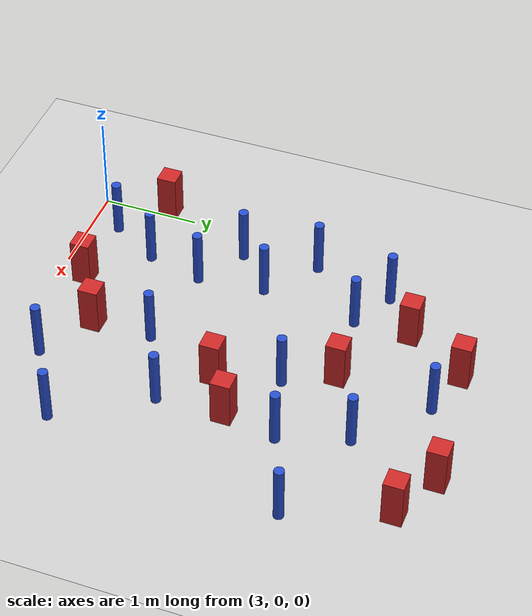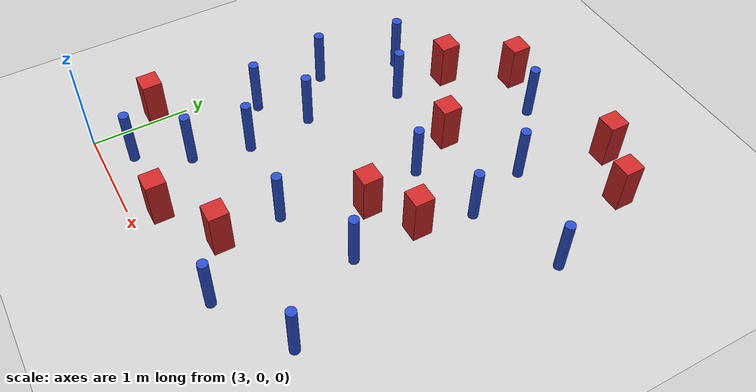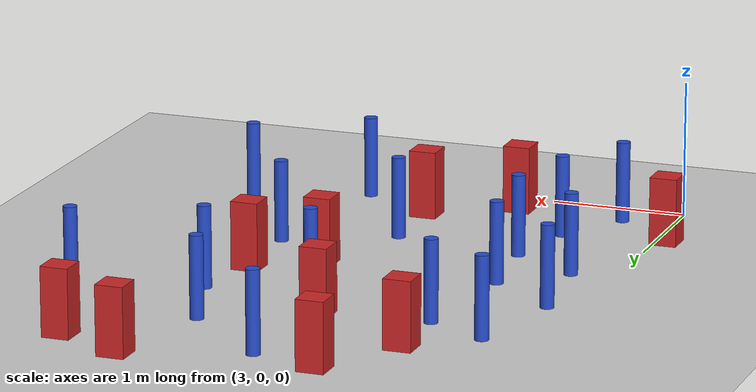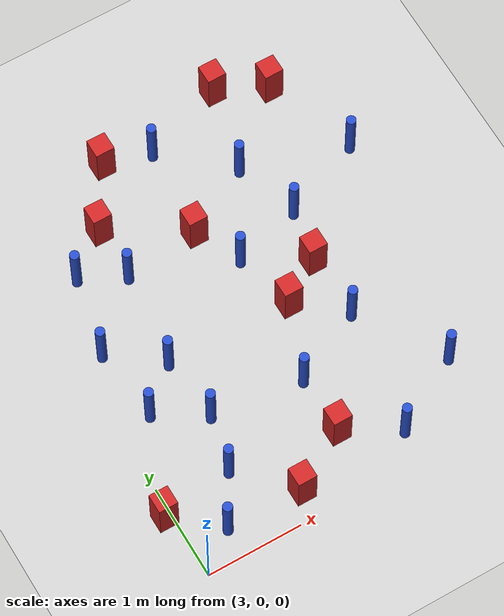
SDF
<sdf version="1.6">
 <world name="default">
  <model name="ground_plane">
   <static>1</static>
   <link name="link">
    <collision name="collision">
     <geometry><plane><normal>0 0 1</normal><size>100 100</size></plane></geometry>
     <surface><friction><ode><mu>100</mu><mu2>50</mu2></ode></friction></surface>
    </collision>
    <visual name="visual">
     <cast_shadows>0</cast_shadows>
     <geometry><plane><normal>0 0 1</normal><size>100 100</size></plane></geometry>
     <material>
      <ambient>1.0 1.0 1.0 1.0</ambient>
      <diffuse>0.8 0.8 0.8 1.0</diffuse>
      <specular>0.01 0.01 0.01 1.000000</specular>
     </material>
    </visual>
   </link>
  </model>
  <model name="square_post_obstacle3">
   <static>true</static>
   <pose>5.5003414567 2.2988376357 1.91545236811e-07 -7.35059704564e-06 1.12565212e-07 2.39332434364e-05</pose>
   <link name="link">
    <pose>0 0 0.25 0 -0 0</pose>
    <inertial>
     <mass>100</mass>
     <inertia>
      <ixx>0.166667</ixx>
      <ixy>0</ixy>
      <ixz>0</ixz>
      <iyy>0.166667</iyy>
      <iyz>0</iyz>
      <izz>0.166667</izz>
     </inertia>
    </inertial>
    <collision name="collision"><geometry><box><size>.2 .2 .5</size></box></geometry></collision>
    <visual name="visual">
     <geometry><box><size>.2 .2 .5</size></box></geometry>
     <material>
      <script><name>Gazebo/Red</name><uri>file://media/materials/scripts/gazebo.material</uri></script>
     </material>
    </visual>
   </link>
  </model>
  <model name="pole_obstacle5">
   <static>true</static>
   <pose>3.86888885222 3.05011009654 7.38925637345e-09 -8.47170692798e-08 1.24976764939e-08 -1.74513093025e-07</pose>
   <link name="link">
    <pose>0 0 0.3 0 -0 0</pose>
    <inertial>
     <mass>1</mass>
     <inertia><ixx>0.145833</ixx><ixy>0</ixy><ixz>0</ixz><iyy>0.145833</iyy><iyz>0</iyz><izz>0.125</izz></inertia>
    </inertial>
    <collision name="collision">
     <geometry><cylinder><radius>0.05</radius><length>.6</length></cylinder></geometry>
    </collision>
    <visual name="visual">
     <geometry><cylinder><radius>0.05</radius><length>.6</length></cylinder></geometry>
     <material>
      <script><name>Gazebo/Blue</name><uri>file://media/materials/scripts/gazebo.material</uri></script>
     </material>
    </visual>
   </link>
  </model>
  <model name="pole_obstacle19">
   <static>true</static>
   <pose>3.6784043861 0.794483437749 7.38925637345e-09 -8.471706928e-08 1.24976765177e-08 -1.74513093012e-07</pose>
   <link name="link">
    <pose>0 0 0.3 0 -0 0</pose>
    <inertial>
     <mass>1</mass>
     <inertia><ixx>0.145833</ixx><ixy>0</ixy><ixz>0</ixz><iyy>0.145833</iyy><iyz>0</iyz><izz>0.125</izz></inertia>
    </inertial>
    <collision name="collision">
     <geometry><cylinder><radius>0.05</radius><length>.6</length></cylinder></geometry>
    </collision>
    <visual name="visual">
     <geometry><cylinder><radius>0.05</radius><length>.6</length></cylinder></geometry>
     <material>
      <script><name>Gazebo/Blue</name><uri>file://media/materials/scripts/gazebo.material</uri></script>
     </material>
    </visual>
   </link>
  </model>
  <model name="pole_obstacle23">
   <static>true</static>
   <pose>6.09118267993 0.743534009738 7.38925637345e-09 -8.47170692799e-08 1.24976765038e-08 -1.74513093018e-07</pose>
   <link name="link">
    <pose>0 0 0.3 0 -0 0</pose>
    <inertial>
     <mass>1</mass>
     <inertia><ixx>0.145833</ixx><ixy>0</ixy><ixz>0</ixz><iyy>0.145833</iyy><iyz>0</iyz><izz>0.125</izz></inertia>
    </inertial>
    <collision name="collision">
     <geometry><cylinder><radius>0.05</radius><length>.6</length></cylinder></geometry>
    </collision>
    <visual name="visual">
     <geometry><cylinder><radius>0.05</radius><length>.6</length></cylinder></geometry>
     <material>
      <script><name>Gazebo/Blue</name><uri>file://media/materials/scripts/gazebo.material</uri></script>
     </material>
    </visual>
   </link>
  </model>
  <model name="square_post_obstacle37">
   <static>true</static>
   <pose>4.7731513642 0.633581381684 1.91545236811e-07 -7.35059704564e-06 1.12565212e-07 2.39332434364e-05</pose>
   <link name="link">
    <pose>0 0 0.25 0 -0 0</pose>
    <inertial>
     <mass>100</mass>
     <inertia>
      <ixx>0.166667</ixx>
      <ixy>0</ixy>
      <ixz>0</ixz>
      <iyy>0.166667</iyy>
      <iyz>0</iyz>
      <izz>0.166667</izz>
     </inertia>
    </inertial>
    <collision name="collision"><geometry><box><size>.2 .2 .5</size></box></geometry></collision>
    <visual name="visual">
     <geometry><box><size>.2 .2 .5</size></box></geometry>
     <material>
      <script><name>Gazebo/Red</name><uri>file://media/materials/scripts/gazebo.material</uri></script>
     </material>
    </visual>
   </link>
  </model>
  <model name="pole_obstacle39">
   <static>true</static>
   <pose>6.46729136939 3.20047677601 7.38925637345e-09 -8.47170692798e-08 1.24976764937e-08 -1.74513093023e-07</pose>
   <link name="link">
    <pose>0 0 0.3 0 -0 0</pose>
    <inertial>
     <mass>1</mass>
     <inertia><ixx>0.145833</ixx><ixy>0</ixy><ixz>0</ixz><iyy>0.145833</iyy><iyz>0</iyz><izz>0.125</izz></inertia>
    </inertial>
    <collision name="collision">
     <geometry><cylinder><radius>0.05</radius><length>.6</length></cylinder></geometry>
    </collision>
    <visual name="visual">
     <geometry><cylinder><radius>0.05</radius><length>.6</length></cylinder></geometry>
     <material>
      <script><name>Gazebo/Blue</name><uri>file://media/materials/scripts/gazebo.material</uri></script>
     </material>
    </visual>
   </link>
  </model>
  <model name="pole_obstacle43">
   <static>true</static>
   <pose>3.8166993312 1.36763252909 7.38925637345e-09 -8.471706928e-08 1.24976765152e-08 -1.74513093012e-07</pose>
   <link name="link">
    <pose>0 0 0.3 0 -0 0</pose>
    <inertial>
     <mass>1</mass>
     <inertia><ixx>0.145833</ixx><ixy>0</ixy><ixz>0</ixz><iyy>0.145833</iyy><iyz>0</iyz><izz>0.125</izz></inertia>
    </inertial>
    <collision name="collision">
     <geometry><cylinder><radius>0.05</radius><length>.6</length></cylinder></geometry>
    </collision>
    <visual name="visual">
     <geometry><cylinder><radius>0.05</radius><length>.6</length></cylinder></geometry>
     <material>
      <script><name>Gazebo/Blue</name><uri>file://media/materials/scripts/gazebo.material</uri></script>
     </material>
    </visual>
   </link>
  </model>
  <model name="square_post_obstacle44">
   <static>true</static>
   <pose>4.17345446867 0.275110753027 1.91545236811e-07 -7.35059704564e-06 1.12565212e-07 2.39332434364e-05</pose>
   <link name="link">
    <pose>0 0 0.25 0 -0 0</pose>
    <inertial>
     <mass>100</mass>
     <inertia>
      <ixx>0.166667</ixx>
      <ixy>0</ixy>
      <ixz>0</ixz>
      <iyy>0.166667</iyy>
      <iyz>0</iyz>
      <izz>0.166667</izz>
     </inertia>
    </inertial>
    <collision name="collision"><geometry><box><size>.2 .2 .5</size></box></geometry></collision>
    <visual name="visual">
     <geometry><box><size>.2 .2 .5</size></box></geometry>
     <material>
      <script><name>Gazebo/Red</name><uri>file://media/materials/scripts/gazebo.material</uri></script>
     </material>
    </visual>
   </link>
  </model>
  <model name="square_post_obstacle59">
   <static>true</static>
   <pose>2.92344916716 0.698422995927 1.91545236811e-07 -7.35059704564e-06 1.12565212e-07 2.39332434364e-05</pose>
   <link name="link">
    <pose>0 0 0.25 0 -0 0</pose>
    <inertial>
     <mass>100</mass>
     <inertia>
      <ixx>0.166667</ixx>
      <ixy>0</ixy>
      <ixz>0</ixz>
      <iyy>0.166667</iyy>
      <iyz>0</iyz>
      <izz>0.166667</izz>
     </inertia>
    </inertial>
    <collision name="collision"><geometry><box><size>.2 .2 .5</size></box></geometry></collision>
    <visual name="visual">
     <geometry><box><size>.2 .2 .5</size></box></geometry>
     <material>
      <script><name>Gazebo/Red</name><uri>file://media/materials/scripts/gazebo.material</uri></script>
     </material>
    </visual>
   </link>
  </model>
  <model name="pole_obstacle63">
   <static>true</static>
   <pose>3.32304238893 1.67327879285 7.38925637345e-09 -8.471706928e-08 1.24976765152e-08 -1.74513093012e-07</pose>
   <link name="link">
    <pose>0 0 0.3 0 -0 0</pose>
    <inertial>
     <mass>1</mass>
     <inertia><ixx>0.145833</ixx><ixy>0</ixy><ixz>0</ixz><iyy>0.145833</iyy><iyz>0</iyz><izz>0.125</izz></inertia>
    </inertial>
    <collision name="collision">
     <geometry><cylinder><radius>0.05</radius><length>.6</length></cylinder></geometry>
    </collision>
    <visual name="visual">
     <geometry><cylinder><radius>0.05</radius><length>.6</length></cylinder></geometry>
     <material>
      <script><name>Gazebo/Blue</name><uri>file://media/materials/scripts/gazebo.material</uri></script>
     </material>
    </visual>
   </link>
  </model>
  <model name="square_post_obstacle82">
   <static>true</static>
   <pose>3.86842492531 3.62858413259 1.91545236811e-07 -7.35059704564e-06 1.12565212e-07 2.39332434364e-05</pose>
   <link name="link">
    <pose>0 0 0.25 0 -0 0</pose>
    <inertial>
     <mass>100</mass>
     <inertia>
      <ixx>0.166667</ixx>
      <ixy>0</ixy>
      <ixz>0</ixz>
      <iyy>0.166667</iyy>
      <iyz>0</iyz>
      <izz>0.166667</izz>
     </inertia>
    </inertial>
    <collision name="collision"><geometry><box><size>.2 .2 .5</size></box></geometry></collision>
    <visual name="visual">
     <geometry><box><size>.2 .2 .5</size></box></geometry>
     <material>
      <script><name>Gazebo/Red</name><uri>file://media/materials/scripts/gazebo.material</uri></script>
     </material>
    </visual>
   </link>
  </model>
  <model name="pole_obstacle100">
   <static>true</static>
   <pose>5.33045395886 0.305030611998 7.38925637345e-09 -8.47170692798e-08 1.24976765003e-08 -1.7451309302e-07</pose>
   <link name="link">
    <pose>0 0 0.3 0 -0 0</pose>
    <inertial>
     <mass>1</mass>
     <inertia><ixx>0.145833</ixx><ixy>0</ixy><ixz>0</ixz><iyy>0.145833</iyy><iyz>0</iyz><izz>0.125</izz></inertia>
    </inertial>
    <collision name="collision">
     <geometry><cylinder><radius>0.05</radius><length>.6</length></cylinder></geometry>
    </collision>
    <visual name="visual">
     <geometry><cylinder><radius>0.05</radius><length>.6</length></cylinder></geometry>
     <material>
      <script><name>Gazebo/Blue</name><uri>file://media/materials/scripts/gazebo.material</uri></script>
     </material>
    </visual>
   </link>
  </model>
  <model name="pole_obstacle107">
   <static>true</static>
   <pose>5.52683108441 1.61557675395 7.38925637345e-09 -8.471706928e-08 1.24976765134e-08 -1.74513093015e-07</pose>
   <link name="link">
    <pose>0 0 0.3 0 -0 0</pose>
    <inertial>
     <mass>1</mass>
     <inertia><ixx>0.145833</ixx><ixy>0</ixy><ixz>0</ixz><iyy>0.145833</iyy><iyz>0</iyz><izz>0.125</izz></inertia>
    </inertial>
    <collision name="collision">
     <geometry><cylinder><radius>0.05</radius><length>.6</length></cylinder></geometry>
    </collision>
    <visual name="visual">
     <geometry><cylinder><radius>0.05</radius><length>.6</length></cylinder></geometry>
     <material>
      <script><name>Gazebo/Blue</name><uri>file://media/materials/scripts/gazebo.material</uri></script>
     </material>
    </visual>
   </link>
  </model>
  <model name="pole_obstacle114">
   <static>true</static>
   <pose>5.39027143031 3.52348049784 7.38925637345e-09 -8.47170692798e-08 1.24976764937e-08 -1.74513093023e-07</pose>
   <link name="link">
    <pose>0 0 0.3 0 -0 0</pose>
    <inertial>
     <mass>1</mass>
     <inertia><ixx>0.145833</ixx><ixy>0</ixy><ixz>0</ixz><iyy>0.145833</iyy><iyz>0</iyz><izz>0.125</izz></inertia>
    </inertial>
    <collision name="collision">
     <geometry><cylinder><radius>0.05</radius><length>.6</length></cylinder></geometry>
    </collision>
    <visual name="visual">
     <geometry><cylinder><radius>0.05</radius><length>.6</length></cylinder></geometry>
     <material>
      <script><name>Gazebo/Blue</name><uri>file://media/materials/scripts/gazebo.material</uri></script>
     </material>
    </visual>
   </link>
  </model>
  <model name="pole_obstacle120">
   <static>true</static>
   <pose>4.74124433946 4.11118361531 7.38925637345e-09 -8.47170692796e-08 1.24976764786e-08 -1.74513093032e-07</pose>
   <link name="link">
    <pose>0 0 0.3 0 -0 0</pose>
    <inertial>
     <mass>1</mass>
     <inertia><ixx>0.145833</ixx><ixy>0</ixy><ixz>0</ixz><iyy>0.145833</iyy><iyz>0</iyz><izz>0.125</izz></inertia>
    </inertial>
    <collision name="collision">
     <geometry><cylinder><radius>0.05</radius><length>.6</length></cylinder></geometry>
    </collision>
    <visual name="visual">
     <geometry><cylinder><radius>0.05</radius><length>.6</length></cylinder></geometry>
     <material>
      <script><name>Gazebo/Blue</name><uri>file://media/materials/scripts/gazebo.material</uri></script>
     </material>
    </visual>
   </link>
  </model>
  <model name="square_post_obstacle130">
   <static>true</static>
   <pose>6.11264661224 4.1706509674 1.91545236811e-07 -7.35059704564e-06 1.12565212e-07 2.39332434364e-05</pose>
   <link name="link">
    <pose>0 0 0.25 0 -0 0</pose>
    <inertial>
     <mass>100</mass>
     <inertia>
      <ixx>0.166667</ixx>
      <ixy>0</ixy>
      <ixz>0</ixz>
      <iyy>0.166667</iyy>
      <iyz>0</iyz>
      <izz>0.166667</izz>
     </inertia>
    </inertial>
    <collision name="collision"><geometry><box><size>.2 .2 .5</size></box></geometry></collision>
    <visual name="visual">
     <geometry><box><size>.2 .2 .5</size></box></geometry>
     <material>
      <script><name>Gazebo/Red</name><uri>file://media/materials/scripts/gazebo.material</uri></script>
     </material>
    </visual>
   </link>
  </model>
  <model name="pole_obstacle147">
   <static>true</static>
   <pose>4.8962752184 2.65623213325 7.38925637345e-09 -8.47170692798e-08 1.24976764937e-08 -1.74513093023e-07</pose>
   <link name="link">
    <pose>0 0 0.3 0 -0 0</pose>
    <inertial>
     <mass>1</mass>
     <inertia><ixx>0.145833</ixx><ixy>0</ixy><ixz>0</ixz><iyy>0.145833</iyy><iyz>0</iyz><izz>0.125</izz></inertia>
    </inertial>
    <collision name="collision">
     <geometry><cylinder><radius>0.05</radius><length>.6</length></cylinder></geometry>
    </collision>
    <visual name="visual">
     <geometry><cylinder><radius>0.05</radius><length>.6</length></cylinder></geometry>
     <material>
      <script><name>Gazebo/Blue</name><uri>file://media/materials/scripts/gazebo.material</uri></script>
     </material>
    </visual>
   </link>
  </model>
  <model name="pole_obstacle149">
   <static>true</static>
   <pose>5.611450467 2.84994746284 7.38925637345e-09 -8.47170692798e-08 1.24976764937e-08 -1.74513093023e-07</pose>
   <link name="link">
    <pose>0 0 0.3 0 -0 0</pose>
    <inertial>
     <mass>1</mass>
     <inertia><ixx>0.145833</ixx><ixy>0</ixy><ixz>0</ixz><iyy>0.145833</iyy><iyz>0</iyz><izz>0.125</izz></inertia>
    </inertial>
    <collision name="collision">
     <geometry><cylinder><radius>0.05</radius><length>.6</length></cylinder></geometry>
    </collision>
    <visual name="visual">
     <geometry><cylinder><radius>0.05</radius><length>.6</length></cylinder></geometry>
     <material>
      <script><name>Gazebo/Blue</name><uri>file://media/materials/scripts/gazebo.material</uri></script>
     </material>
    </visual>
   </link>
  </model>
  <model name="square_post_obstacle146">
   <static>true</static>
   <pose>4.65564173795 3.13898180986 1.91545236811e-07 -7.35059704564e-06 1.12565212e-07 2.39332434364e-05</pose>
   <link name="link">
    <pose>0 0 0.25 0 -0 0</pose>
    <inertial>
     <mass>100</mass>
     <inertia>
      <ixx>0.166667</ixx>
      <ixy>0</ixy>
      <ixz>0</ixz>
      <iyy>0.166667</iyy>
      <iyz>0</iyz>
      <izz>0.166667</izz>
     </inertia>
    </inertial>
    <collision name="collision"><geometry><box><size>.2 .2 .5</size></box></geometry></collision>
    <visual name="visual">
     <geometry><box><size>.2 .2 .5</size></box></geometry>
     <material>
      <script><name>Gazebo/Red</name><uri>file://media/materials/scripts/gazebo.material</uri></script>
     </material>
    </visual>
   </link>
  </model>
  <model name="pole_obstacle156">
   <static>true</static>
   <pose>3.4236863803 3.28266403506 7.38925637345e-09 -8.47170692798e-08 1.24976764939e-08 -1.74513093025e-07</pose>
   <link name="link">
    <pose>0 0 0.3 0 -0 0</pose>
    <inertial>
     <mass>1</mass>
     <inertia><ixx>0.145833</ixx><ixy>0</ixy><ixz>0</ixz><iyy>0.145833</iyy><iyz>0</iyz><izz>0.125</izz></inertia>
    </inertial>
    <collision name="collision">
     <geometry><cylinder><radius>0.05</radius><length>.6</length></cylinder></geometry>
    </collision>
    <visual name="visual">
     <geometry><cylinder><radius>0.05</radius><length>.6</length></cylinder></geometry>
     <material>
      <script><name>Gazebo/Blue</name><uri>file://media/materials/scripts/gazebo.material</uri></script>
     </material>
    </visual>
   </link>
  </model>
  <model name="square_post_obstacle149">
   <static>true</static>
   <pose>4.24840614618 4.25243659055 1.91545236811e-07 -7.35059704564e-06 1.12565212e-07 2.39332434364e-05</pose>
   <link name="link">
    <pose>0 0 0.25 0 -0 0</pose>
    <inertial>
     <mass>100</mass>
     <inertia>
      <ixx>0.166667</ixx>
      <ixy>0</ixy>
      <ixz>0</ixz>
      <iyy>0.166667</iyy>
      <iyz>0</iyz>
      <izz>0.166667</izz>
     </inertia>
    </inertial>
    <collision name="collision"><geometry><box><size>.2 .2 .5</size></box></geometry></collision>
    <visual name="visual">
     <geometry><box><size>.2 .2 .5</size></box></geometry>
     <material>
      <script><name>Gazebo/Red</name><uri>file://media/materials/scripts/gazebo.material</uri></script>
     </material>
    </visual>
   </link>
  </model>
  <model name="square_post_obstacle157">
   <static>true</static>
   <pose>5.06208984538 2.01843706307 1.91545236811e-07 -7.35059704564e-06 1.12565212e-07 2.39332434364e-05</pose>
   <link name="link">
    <pose>0 0 0.25 0 -0 0</pose>
    <inertial>
     <mass>100</mass>
     <inertia>
      <ixx>0.166667</ixx>
      <ixy>0</ixy>
      <ixz>0</ixz>
      <iyy>0.166667</iyy>
      <iyz>0</iyz>
      <izz>0.166667</izz>
     </inertia>
    </inertial>
    <collision name="collision"><geometry><box><size>.2 .2 .5</size></box></geometry></collision>
    <visual name="visual">
     <geometry><box><size>.2 .2 .5</size></box></geometry>
     <material>
      <script><name>Gazebo/Red</name><uri>file://media/materials/scripts/gazebo.material</uri></script>
     </material>
    </visual>
   </link>
  </model>
  <model name="pole_obstacle172">
   <static>true</static>
   <pose>4.76711739732 1.24380400241 7.38925637345e-09 -8.471706928e-08 1.24976765134e-08 -1.74513093015e-07</pose>
   <link name="link">
    <pose>0 0 0.3 0 -0 0</pose>
    <inertial>
     <mass>1</mass>
     <inertia><ixx>0.145833</ixx><ixy>0</ixy><ixz>0</ixz><iyy>0.145833</iyy><iyz>0</iyz><izz>0.125</izz></inertia>
    </inertial>
    <collision name="collision">
     <geometry><cylinder><radius>0.05</radius><length>.6</length></cylinder></geometry>
    </collision>
    <visual name="visual">
     <geometry><cylinder><radius>0.05</radius><length>.6</length></cylinder></geometry>
     <material>
      <script><name>Gazebo/Blue</name><uri>file://media/materials/scripts/gazebo.material</uri></script>
     </material>
    </visual>
   </link>
  </model>
  <model name="pole_obstacle179">
   <static>true</static>
   <pose>3.74528586074 2.05023647152 7.38925637345e-09 -8.47170692798e-08 1.24976764939e-08 -1.74513093025e-07</pose>
   <link name="link">
    <pose>0 0 0.3 0 -0 0</pose>
    <inertial>
     <mass>1</mass>
     <inertia><ixx>0.145833</ixx><ixy>0</ixy><ixz>0</ixz><iyy>0.145833</iyy><iyz>0</iyz><izz>0.125</izz></inertia>
    </inertial>
    <collision name="collision">
     <geometry><cylinder><radius>0.05</radius><length>.6</length></cylinder></geometry>
    </collision>
    <visual name="visual">
     <geometry><cylinder><radius>0.05</radius><length>.6</length></cylinder></geometry>
     <material>
      <script><name>Gazebo/Blue</name><uri>file://media/materials/scripts/gazebo.material</uri></script>
     </material>
    </visual>
   </link>
  </model>
  <model name="pole_obstacle182">
   <static>true</static>
   <pose>3.37890135898 0.296291370865 7.38925637345e-09 -8.471706928e-08 1.24976765126e-08 -1.74513093015e-07</pose>
   <link name="link">
    <pose>0 0 0.3 0 -0 0</pose>
    <inertial>
     <mass>1</mass>
     <inertia><ixx>0.145833</ixx><ixy>0</ixy><ixz>0</ixz><iyy>0.145833</iyy><iyz>0</iyz><izz>0.125</izz></inertia>
    </inertial>
    <collision name="collision">
     <geometry><cylinder><radius>0.05</radius><length>.6</length></cylinder></geometry>
    </collision>
    <visual name="visual">
     <geometry><cylinder><radius>0.05</radius><length>.6</length></cylinder></geometry>
     <material>
      <script><name>Gazebo/Blue</name><uri>file://media/materials/scripts/gazebo.material</uri></script>
     </material>
    </visual>
   </link>
  </model>
  <model name="pole_obstacle191">
   <static>true</static>
   <pose>3.23835137609 2.45322230597 7.38925637345e-09 -8.47170692798e-08 1.24976764939e-08 -1.74513093025e-07</pose>
   <link name="link">
    <pose>0 0 0.3 0 -0 0</pose>
    <inertial>
     <mass>1</mass>
     <inertia><ixx>0.145833</ixx><ixy>0</ixy><ixz>0</ixz><iyy>0.145833</iyy><iyz>0</iyz><izz>0.125</izz></inertia>
    </inertial>
    <collision name="collision">
     <geometry><cylinder><radius>0.05</radius><length>.6</length></cylinder></geometry>
    </collision>
    <visual name="visual">
     <geometry><cylinder><radius>0.05</radius><length>.6</length></cylinder></geometry>
     <material>
      <script><name>Gazebo/Blue</name><uri>file://media/materials/scripts/gazebo.material</uri></script>
     </material>
    </visual>
   </link>
  </model>
  <model name="square_post_obstacle205">
   <static>true</static>
   <pose>5.60454738788 4.41887134947 1.91545236811e-07 -7.35059704564e-06 1.12565212e-07 2.39332434364e-05</pose>
   <link name="link">
    <pose>0 0 0.25 0 -0 0</pose>
    <inertial>
     <mass>100</mass>
     <inertia>
      <ixx>0.166667</ixx>
      <ixy>0</ixy>
      <ixz>0</ixz>
      <iyy>0.166667</iyy>
      <iyz>0</iyz>
      <izz>0.166667</izz>
     </inertia>
    </inertial>
    <collision name="collision"><geometry><box><size>.2 .2 .5</size></box></geometry></collision>
    <visual name="visual">
     <geometry><box><size>.2 .2 .5</size></box></geometry>
     <material>
      <script><name>Gazebo/Red</name><uri>file://media/materials/scripts/gazebo.material</uri></script>
     </material>
    </visual>
   </link>
  </model>
 </world>
</sdf>
